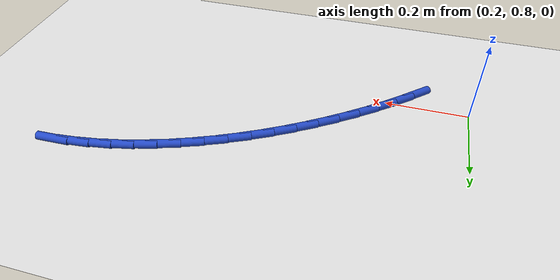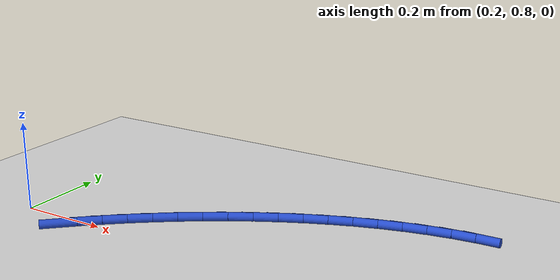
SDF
<sdf version="1.6">
 <world name="default">
  <model name="ground_plane">
   <static>1</static>
   <link name="link">
    <collision name="collision">
     <geometry><plane><normal>0 0 1</normal><size>100 100</size></plane></geometry>
     <surface><friction><ode><mu>100</mu><mu2>50</mu2></ode></friction></surface>
    </collision>
    <visual name="visual">
     <cast_shadows>0</cast_shadows>
     <geometry><plane><normal>0 0 1</normal><size>100 100</size></plane></geometry>
     <material>
      <script><uri>file://media/materials/scripts/gazebo.material</uri><name>Gazebo/WhiteGlow</name></script>
     </material>
    </visual>
   </link>
  </model>
  <model name="line">
   <link name="link_16">
    <pose>0.3293174163846304 0.7540000667326596 0.01 0 1.57 0.766532954358081</pose>
    <collision name="collision">
     <geometry><cylinder><radius>0.01</radius><length>0.08</length></cylinder></geometry>
    </collision>
    <visual name="visual">
     <material>
      <script><name>Gazebo/Blue</name><uri>file://media/materials/scripts/gazebo.material</uri></script>
     </material>
     <geometry><cylinder><radius>0.01</radius><length>0.08</length></cylinder></geometry>
    </visual>
   </link>
   <link name="link_17">
    <pose>0.3678486045584633 0.7911042092842493 0.01 0 1.57 0.7302350898071815</pose>
    <collision name="collision">
     <geometry><cylinder><radius>0.01</radius><length>0.08</length></cylinder></geometry>
    </collision>
    <visual name="visual">
     <material>
      <script><name>Gazebo/Blue</name><uri>file://media/materials/scripts/gazebo.material</uri></script>
     </material>
     <geometry><cylinder><radius>0.01</radius><length>0.08</length></cylinder></geometry>
    </visual>
   </link>
   <link name="link_18">
    <pose>0.4079273334289774 0.826988337919224 0.01 0 1.57 0.6957829390940024</pose>
    <collision name="collision">
     <geometry><cylinder><radius>0.01</radius><length>0.08</length></cylinder></geometry>
    </collision>
    <visual name="visual">
     <material>
      <script><name>Gazebo/Blue</name><uri>file://media/materials/scripts/gazebo.material</uri></script>
     </material>
     <geometry><cylinder><radius>0.01</radius><length>0.08</length></cylinder></geometry>
    </visual>
   </link>
   <link name="link_19">
    <pose>0.44945405679796085 0.8616675122195406 0.01 0 1.57 0.663051465752296</pose>
    <collision name="collision">
     <geometry><cylinder><radius>0.01</radius><length>0.08</length></cylinder></geometry>
    </collision>
    <visual name="visual">
     <material>
      <script><name>Gazebo/Blue</name><uri>file://media/materials/scripts/gazebo.material</uri></script>
     </material>
     <geometry><cylinder><radius>0.01</radius><length>0.08</length></cylinder></geometry>
    </visual>
   </link>
   <link name="link_20">
    <pose>0.49232901586469335 0.8951531132384675 0.01 0 1.57 0.630773106916503</pose>
    <collision name="collision">
     <geometry><cylinder><radius>0.01</radius><length>0.08</length></cylinder></geometry>
    </collision>
    <visual name="visual">
     <material>
      <script><name>Gazebo/Blue</name><uri>file://media/materials/scripts/gazebo.material</uri></script>
     </material>
     <geometry><cylinder><radius>0.01</radius><length>0.08</length></cylinder></geometry>
    </visual>
   </link>
   <link name="link_21">
    <pose>0.5364476192525597 0.9273729069805606 0.01 0 1.57 0.5975806511527267</pose>
    <collision name="collision">
     <geometry><cylinder><radius>0.01</radius><length>0.08</length></cylinder></geometry>
    </collision>
    <visual name="visual">
     <material>
      <script><name>Gazebo/Blue</name><uri>file://media/materials/scripts/gazebo.material</uri></script>
     </material>
     <geometry><cylinder><radius>0.01</radius><length>0.08</length></cylinder></geometry>
    </visual>
   </link>
   <link name="link_22">
    <pose>0.5817004746196611 0.9581715913403834 0.01 0 1.57 0.5631741896335456</pose>
    <collision name="collision">
     <geometry><cylinder><radius>0.01</radius><length>0.08</length></cylinder></geometry>
    </collision>
    <visual name="visual">
     <material>
      <script><name>Gazebo/Blue</name><uri>file://media/materials/scripts/gazebo.material</uri></script>
     </material>
     <geometry><cylinder><radius>0.01</radius><length>0.08</length></cylinder></geometry>
    </visual>
   </link>
   <link name="link_23">
    <pose>0.6279779833437995 0.9873902950730319 0.01 0 1.57 0.5272971381579243</pose>
    <collision name="collision">
     <geometry><cylinder><radius>0.01</radius><length>0.08</length></cylinder></geometry>
    </collision>
    <visual name="visual">
     <material>
      <script><name>Gazebo/Blue</name><uri>file://media/materials/scripts/gazebo.material</uri></script>
     </material>
     <geometry><cylinder><radius>0.01</radius><length>0.08</length></cylinder></geometry>
    </visual>
   </link>
   <link name="link_24">
    <pose>0.675170546802775 1.0148701469336008 0.01 0 1.57 0.48968454022798497</pose>
    <collision name="collision">
     <geometry><cylinder><radius>0.01</radius><length>0.08</length></cylinder></geometry>
    </collision>
    <visual name="visual">
     <material>
      <script><name>Gazebo/Blue</name><uri>file://media/materials/scripts/gazebo.material</uri></script>
     </material>
     <geometry><cylinder><radius>0.01</radius><length>0.08</length></cylinder></geometry>
    </visual>
   </link>
   <link name="link_25">
    <pose>0.7231685663743896 1.0404522756771863 0.01 0 1.57 0.45006178031251953</pose>
    <collision name="collision">
     <geometry><cylinder><radius>0.01</radius><length>0.08</length></cylinder></geometry>
    </collision>
    <visual name="visual">
     <material>
      <script><name>Gazebo/Blue</name><uri>file://media/materials/scripts/gazebo.material</uri></script>
     </material>
     <geometry><cylinder><radius>0.01</radius><length>0.08</length></cylinder></geometry>
    </visual>
   </link>
   <link name="link_26">
    <pose>0.7718624434364442 1.0639778100588837 0.01 0 1.57 0.4081446542346879</pose>
    <collision name="collision">
     <geometry><cylinder><radius>0.01</radius><length>0.08</length></cylinder></geometry>
    </collision>
    <visual name="visual">
     <material>
      <script><name>Gazebo/Blue</name><uri>file://media/materials/scripts/gazebo.material</uri></script>
     </material>
     <geometry><cylinder><radius>0.01</radius><length>0.08</length></cylinder></geometry>
    </visual>
   </link>
   <link name="link_27">
    <pose>0.8211425793667394 1.0852878788337879 0.01 0 1.57 0.36364127158582243</pose>
    <collision name="collision">
     <geometry><cylinder><radius>0.01</radius><length>0.08</length></cylinder></geometry>
    </collision>
    <visual name="visual">
     <material>
      <script><name>Gazebo/Blue</name><uri>file://media/materials/scripts/gazebo.material</uri></script>
     </material>
     <geometry><cylinder><radius>0.01</radius><length>0.08</length></cylinder></geometry>
    </visual>
   </link>
   <link name="link_28">
    <pose>0.8708993755430775 1.1042236107569954 0.01 0 1.57 0.31625643321056335</pose>
    <collision name="collision">
     <geometry><cylinder><radius>0.01</radius><length>0.08</length></cylinder></geometry>
    </collision>
    <visual name="visual">
     <material>
      <script><name>Gazebo/Blue</name><uri>file://media/materials/scripts/gazebo.material</uri></script>
     </material>
     <geometry><cylinder><radius>0.01</radius><length>0.08</length></cylinder></geometry>
    </visual>
   </link>
   <link name="link_29">
    <pose>0.9210232333432591 1.1206261345836015 0.01 0 1.57 0.2656992879545503</pose>
    <collision name="collision">
     <geometry><cylinder><radius>0.01</radius><length>0.08</length></cylinder></geometry>
    </collision>
    <visual name="visual">
     <material>
      <script><name>Gazebo/Blue</name><uri>file://media/materials/scripts/gazebo.material</uri></script>
     </material>
     <geometry><cylinder><radius>0.01</radius><length>0.08</length></cylinder></geometry>
    </visual>
   </link>
   <link name="link_30">
    <pose>0.9714045541450855 1.1343365790687014 0.01 0 1.57 0.21169518020030623</pose>
    <collision name="collision">
     <geometry><cylinder><radius>0.01</radius><length>0.08</length></cylinder></geometry>
    </collision>
    <visual name="visual">
     <material>
      <script><name>Gazebo/Blue</name><uri>file://media/materials/scripts/gazebo.material</uri></script>
     </material>
     <geometry><cylinder><radius>0.01</radius><length>0.08</length></cylinder></geometry>
    </visual>
   </link>
   <link name="link_31">
    <pose>1.0219337393263574 1.1451960729673907 0.01 0 1.57 0.15400256957993785</pose>
    <collision name="collision">
     <geometry><cylinder><radius>0.01</radius><length>0.08</length></cylinder></geometry>
    </collision>
    <visual name="visual">
     <material>
      <script><name>Gazebo/Blue</name><uri>file://media/materials/scripts/gazebo.material</uri></script>
     </material>
     <geometry><cylinder><radius>0.01</radius><length>0.08</length></cylinder></geometry>
    </visual>
   </link>
   <link name="link_32">
    <pose>1.0725011902648767 1.153045745034765 0.01 0 1.57 0.09243560905928495</pose>
    <collision name="collision">
     <geometry><cylinder><radius>0.01</radius><length>0.08</length></cylinder></geometry>
    </collision>
    <visual name="visual">
     <material>
      <script><name>Gazebo/Blue</name><uri>file://media/materials/scripts/gazebo.material</uri></script>
     </material>
     <geometry><cylinder><radius>0.01</radius><length>0.08</length></cylinder></geometry>
    </visual>
   </link>
   <link name="link_33">
    <pose>1.1229973083384441 1.15772672402592 0.01 0 1.57 0.029247220058521664</pose>
    <collision name="collision">
     <geometry><cylinder><radius>0.01</radius><length>0.08</length></cylinder></geometry>
    </collision>
    <visual name="visual">
     <material>
      <script><name>Gazebo/Blue</name><uri>file://media/materials/scripts/gazebo.material</uri></script>
     </material>
     <geometry><cylinder><radius>0.01</radius><length>0.08</length></cylinder></geometry>
    </visual>
   </link>
  </model>
 </world>
</sdf>
